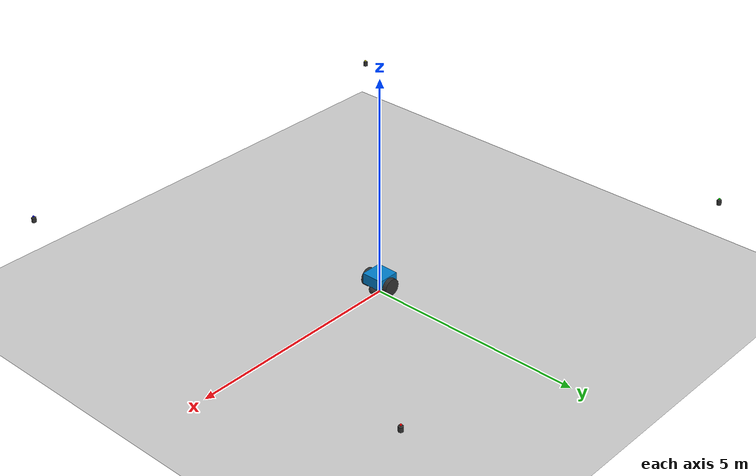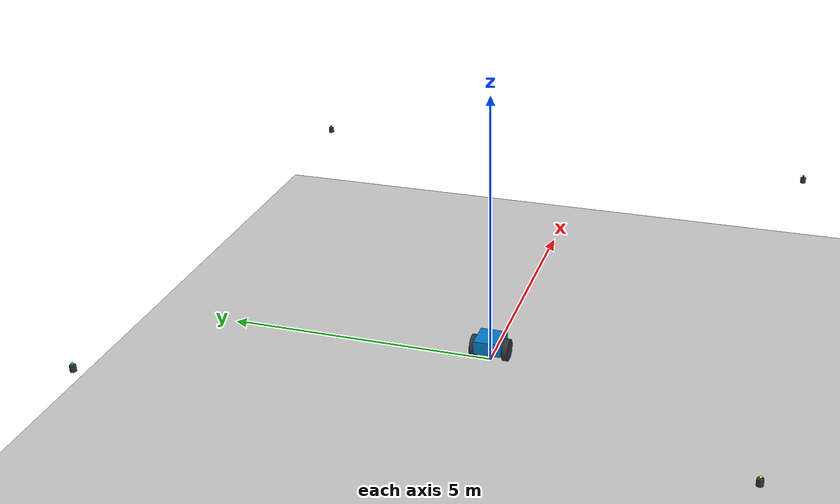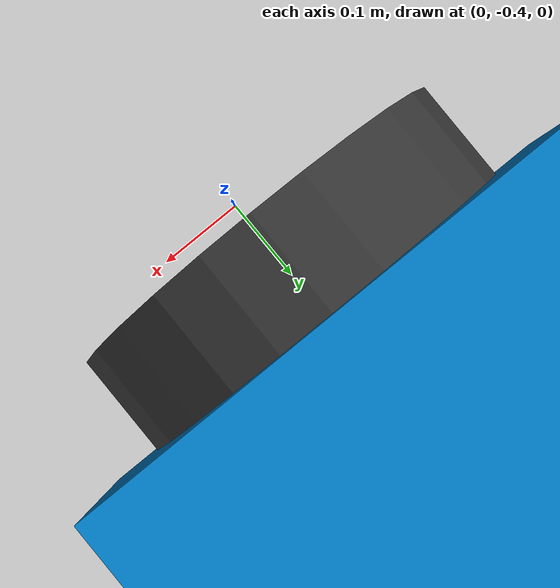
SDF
<?xml version="1.0" ?>
<sdf version="1.7">
  <world name="uwb_world">
    <physics name="1ms" type="ignored">
      <max_step_size>0.001</max_step_size>
      <real_time_factor>1.0</real_time_factor>
    </physics>

    <plugin
      filename="gz-sim-physics-system"
      name="gz::sim::systems::Physics">
    </plugin>
    <plugin
      filename="gz-sim-user-commands-system"
      name="gz::sim::systems::UserCommands">
    </plugin>
    <plugin
      filename="gz-sim-scene-broadcaster-system"
      name="gz::sim::systems::SceneBroadcaster">
    </plugin>
    <plugin
      filename="libignition-gazebo-sensors-system.so"
      name="ignition::gazebo::systems::Sensors">
      <render_engine>ogre</render_engine>
    </plugin>

    <scene>
      <ambient>1.0 1.0 1.0 1</ambient>
      <background>0.8 0.8 0.8 1</background>
      <grid>true</grid>
    </scene>

    <model name="ground_plane">
      <static>true</static>
      <link name="link">
        <collision name="collision">
          <geometry>
            <plane>
              <normal>0 0 1</normal>
              <size>100 100</size>
            </plane>
          </geometry>
        </collision>
        <visual name="visual">
          <geometry>
            <plane>
              <normal>0 0 1</normal>
              <size>100 100</size>
            </plane>
          </geometry>
          <material>
            <ambient>0.8 0.8 0.8 1</ambient>
            <diffuse>0.8 0.8 0.8 1</diffuse>
            <specular>0.8 0.8 0.8 1</specular>
          </material>
        </visual>
      </link>
    </model>

    <!-- UWB Anchor 1 (Static Reference) -->
    <model name="uwb_anchor_0">
      <static>true</static>
      <pose>5 5 2.0 0 0 0</pose>
      <link name="link">
        <visual name="visual">
          <geometry>
            <cylinder>
              <radius>0.05</radius>
              <length>0.1</length>
            </cylinder>
          </geometry>
          <material>
            <ambient>0.2 0.2 0.2 1</ambient>
            <diffuse>0.2 0.2 0.2 1</diffuse>
          </material>
        </visual>
        <!-- Antenna Visual -->
        <visual name="antenna">
          <pose>0 0 0.08 0 0 0</pose>
          <geometry><sphere><radius>0.02</radius></sphere></geometry>
          <material><ambient>1 0 0 1</ambient><diffuse>1 0 0 1</diffuse></material>
        </visual>
      </link>
    </model>

    <!-- UWB Anchor 2 -->
    <model name="uwb_anchor_1">
      <static>true</static>
      <pose>-5 5 2.0 0 0 0</pose>
      <link name="link">
        <visual name="visual">
          <geometry>
            <cylinder><radius>0.05</radius><length>0.1</length></cylinder>
          </geometry>
          <material><ambient>0.2 0.2 0.2 1</ambient><diffuse>0.2 0.2 0.2 1</diffuse></material>
        </visual>
        <visual name="antenna">
          <pose>0 0 0.08 0 0 0</pose>
          <geometry><sphere><radius>0.02</radius></sphere></geometry>
          <material><ambient>0 1 0 1</ambient><diffuse>0 1 0 1</diffuse></material>
        </visual>
      </link>
    </model>

    <!-- UWB Anchor 3 -->
    <model name="uwb_anchor_2">
      <static>true</static>
      <pose>5 -5 2.0 0 0 0</pose>
      <link name="link">
        <visual name="visual">
          <geometry>
            <cylinder><radius>0.05</radius><length>0.1</length></cylinder>
          </geometry>
          <material><ambient>0.2 0.2 0.2 1</ambient><diffuse>0.2 0.2 0.2 1</diffuse></material>
        </visual>
        <visual name="antenna">
          <pose>0 0 0.08 0 0 0</pose>
          <geometry><sphere><radius>0.02</radius></sphere></geometry>
          <material><ambient>0 0 1 1</ambient><diffuse>0 0 1 1</diffuse></material>
        </visual>
      </link>
    </model>

    <!-- UWB Anchor 4 -->
    <model name="uwb_anchor_3">
      <static>true</static>
      <pose>-5 -5 2.0 0 0 0</pose>
      <link name="link">
        <visual name="visual">
          <geometry>
            <cylinder><radius>0.05</radius><length>0.1</length></cylinder>
          </geometry>
          <material><ambient>0.2 0.2 0.2 1</ambient><diffuse>0.2 0.2 0.2 1</diffuse></material>
        </visual>
        <visual name="antenna">
          <pose>0 0 0.08 0 0 0</pose>
          <geometry><sphere><radius>0.02</radius></sphere></geometry>
          <material><ambient>1 1 0 1</ambient><diffuse>1 1 0 1</diffuse></material>
        </visual>
      </link>
    </model>

    <!-- Tag Robot (Mobile Entity) -->
    <model name="tag_robot">
      <pose>0 0 0.35 0 0 0</pose>
      <link name="base_link">
        <inertial>
          <mass>1.5</mass>
          <inertia>
            <ixx>0.05</ixx><iyy>0.05</iyy><izz>0.05</izz>
          </inertia>
        </inertial>
        <collision name="collision">
          <geometry><box><size>0.5 0.5 0.25</size></box></geometry>
        </collision>
        <visual name="visual">
          <geometry><box><size>0.5 0.5 0.25</size></box></geometry>
          <material>
            <ambient>0 0.5 0.8 1</ambient>
            <diffuse>0 0.5 0.8 1</diffuse>
          </material>
        </visual>
      </link>

      <!-- Left Wheel -->
      <link name="left_wheel">
        <pose>0 0.3 -0.1 -1.5707 0 0</pose>
        <inertial>
          <mass>0.5</mass>
          <inertia>
            <ixx>0.001</ixx><iyy>0.001</iyy><izz>0.001</izz>
          </inertia>
        </inertial>
        <collision name="collision">
          <geometry><cylinder><radius>0.2</radius><length>0.1</length></cylinder></geometry>
          <surface>
            <friction>
              <ode><mu>1.0</mu><mu2>1.0</mu2></ode>
            </friction>
          </surface>
        </collision>
        <visual name="visual">
          <geometry><cylinder><radius>0.2</radius><length>0.1</length></cylinder></geometry>
          <material><ambient>0.2 0.2 0.2 1</ambient><diffuse>0.2 0.2 0.2 1</diffuse></material>
        </visual>
      </link>

      <!-- Right Wheel -->
      <link name="right_wheel">
        <pose>0 -0.3 -0.1 -1.5707 0 0</pose>
        <inertial>
          <mass>0.5</mass>
          <inertia>
            <ixx>0.001</ixx><iyy>0.001</iyy><izz>0.001</izz>
          </inertia>
        </inertial>
        <collision name="collision">
          <geometry><cylinder><radius>0.2</radius><length>0.1</length></cylinder></geometry>
          <surface>
            <friction>
              <ode><mu>1.0</mu><mu2>1.0</mu2></ode>
            </friction>
          </surface>
        </collision>
        <visual name="visual">
          <geometry><cylinder><radius>0.2</radius><length>0.1</length></cylinder></geometry>
          <material><ambient>0.2 0.2 0.2 1</ambient><diffuse>0.2 0.2 0.2 1</diffuse></material>
        </visual>
      </link>

      <!-- Castor -->
      <link name="castor">
        <pose>0.2 0 -0.2 0 0 0</pose>
        <collision name="collision">
          <geometry><sphere><radius>0.1</radius></sphere></geometry>
          <surface>
            <friction>
              <ode><mu>0</mu><mu2>0</mu2></ode>
            </friction>
          </surface>
        </collision>
        <visual name="visual">
          <geometry><sphere><radius>0.1</radius></sphere></geometry>
          <material><ambient>0.2 0.2 0.2 1</ambient><diffuse>0.2 0.2 0.2 1</diffuse></material>
        </visual>
      </link>

      <joint name="left_wheel_joint" type="revolute">
        <parent>base_link</parent>
        <child>left_wheel</child>
        <axis>
          <xyz>0 0 1</xyz>
        </axis>
      </joint>

      <joint name="right_wheel_joint" type="revolute">
        <parent>base_link</parent>
        <child>right_wheel</child>
        <axis>
          <xyz>0 0 1</xyz>
        </axis>
      </joint>

      <joint name="castor_joint" type="ball">
        <parent>base_link</parent>
        <child>castor</child>
      </joint>

      <!-- Diff Drive Plugin -->
      <plugin
        filename="libignition-gazebo-diff-drive-system.so"
        name="ignition::gazebo::systems::DiffDrive">
        <left_joint>left_wheel_joint</left_joint>
        <right_joint>right_wheel_joint</right_joint>
        <wheel_separation>0.6</wheel_separation>
        <wheel_radius>0.2</wheel_radius>
        <odom_publish_frequency>20</odom_publish_frequency>
        <topic>/cmd_vel</topic>
        <odom_topic>/odom</odom_topic>
        <tf_topic>/model/tag_robot/tf</tf_topic>
        <frame_id>odom</frame_id>
        <child_frame_id>base_footprint</child_frame_id>
        <publish_odom_tf>true</publish_odom_tf>
      </plugin>

      <!-- Joint State Publisher for Wheel Visualization -->
      <plugin
        filename="libignition-gazebo-joint-state-publisher-system.so"
        name="ignition::gazebo::systems::JointStatePublisher">
        <topic>/joint_states</topic>
      </plugin>

      <!-- Odometry Publisher for Ground Truth (Exact) -->
      <plugin
        filename="libignition-gazebo-odometry-publisher-system.so"
        name="ignition::gazebo::systems::OdometryPublisher">
        <odom_frame>map</odom_frame>
        <robot_base_frame>base_footprint</robot_base_frame>
        <odom_topic>/ground_truth/odom</odom_topic>
        <tf_topic>/ground_truth/tf</tf_topic>
        <publish_tf>false</publish_tf>
        <update_frequency>50</update_frequency>
      </plugin>

      <!-- FRONT TAG PLUGINS -->
      <plugin filename="libUWBPlugin.so" name="ros2_uwb_research_sim::UWBPlugin">
        <host_link>front_tag</host_link>
        <target_entity>uwb_anchor_0</target_entity>
        <target_position>5 5 2</target_position>
        <update_rate>20.0</update_rate>
        <gaussian_std>0.02</gaussian_std>
        <nlos_lambda>1.5</nlos_lambda>
        <nlos_prob>0.1</nlos_prob>
        <multipath_alpha>0.8</multipath_alpha>
        <multipath_std>0.01</multipath_std>
        <clock_drift_std>0.0001</clock_drift_std>
        <topic>/uwb/front/range_0</topic>
        <research_topic>/uwb/front/research_data</research_topic>
        <frame_id>uwb_anchor_0</frame_id>
      </plugin>
      <plugin filename="libUWBPlugin.so" name="ros2_uwb_research_sim::UWBPlugin">
        <host_link>front_tag</host_link>
        <target_entity>uwb_anchor_1</target_entity>
        <target_position>-5 5 2</target_position>
        <update_rate>20.0</update_rate>
        <gaussian_std>0.02</gaussian_std>
        <nlos_lambda>1.5</nlos_lambda>
        <nlos_prob>0.1</nlos_prob>
        <topic>/uwb/front/range_1</topic>
        <research_topic>/uwb/front/research_data</research_topic>
        <frame_id>uwb_anchor_1</frame_id>
      </plugin>
      <plugin filename="libUWBPlugin.so" name="ros2_uwb_research_sim::UWBPlugin">
        <host_link>front_tag</host_link>
        <target_entity>uwb_anchor_2</target_entity>
        <target_position>5 -5 2</target_position>
        <update_rate>20.0</update_rate>
        <gaussian_std>0.02</gaussian_std>
        <nlos_lambda>1.5</nlos_lambda>
        <nlos_prob>0.1</nlos_prob>
        <topic>/uwb/front/range_2</topic>
        <research_topic>/uwb/front/research_data</research_topic>
        <frame_id>uwb_anchor_2</frame_id>
      </plugin>
      <plugin filename="libUWBPlugin.so" name="ros2_uwb_research_sim::UWBPlugin">
        <host_link>front_tag</host_link>
        <target_entity>uwb_anchor_3</target_entity>
        <target_position>-5 -5 2</target_position>
        <update_rate>20.0</update_rate>
        <gaussian_std>0.02</gaussian_std>
        <nlos_lambda>1.5</nlos_lambda>
        <nlos_prob>0.1</nlos_prob>
        <topic>/uwb/front/range_3</topic>
        <research_topic>/uwb/front/research_data</research_topic>
        <frame_id>uwb_anchor_3</frame_id>
      </plugin>

      <!-- REAR TAG PLUGINS -->
      <plugin filename="libUWBPlugin.so" name="ros2_uwb_research_sim::UWBPlugin">
        <host_link>rear_tag</host_link>
        <target_entity>uwb_anchor_0</target_entity>
        <target_position>5 5 2</target_position>
        <update_rate>20.0</update_rate>
        <gaussian_std>0.02</gaussian_std>
        <nlos_lambda>1.5</nlos_lambda>
        <nlos_prob>0.1</nlos_prob>
        <topic>/uwb/rear/range_0</topic>
        <research_topic>/uwb/rear/research_data</research_topic>
        <frame_id>uwb_anchor_0</frame_id>
      </plugin>
      <plugin filename="libUWBPlugin.so" name="ros2_uwb_research_sim::UWBPlugin">
        <host_link>rear_tag</host_link>
        <target_entity>uwb_anchor_1</target_entity>
        <target_position>-5 5 2</target_position>
        <update_rate>20.0</update_rate>
        <gaussian_std>0.02</gaussian_std>
        <nlos_lambda>1.5</nlos_lambda>
        <nlos_prob>0.1</nlos_prob>
        <topic>/uwb/rear/range_1</topic>
        <research_topic>/uwb/rear/research_data</research_topic>
        <frame_id>uwb_anchor_1</frame_id>
      </plugin>
      <plugin filename="libUWBPlugin.so" name="ros2_uwb_research_sim::UWBPlugin">
        <host_link>rear_tag</host_link>
        <target_entity>uwb_anchor_2</target_entity>
        <target_position>5 -5 2</target_position>
        <update_rate>20.0</update_rate>
        <gaussian_std>0.02</gaussian_std>
        <nlos_lambda>1.5</nlos_lambda>
        <nlos_prob>0.1</nlos_prob>
        <topic>/uwb/rear/range_2</topic>
        <research_topic>/uwb/rear/research_data</research_topic>
        <frame_id>uwb_anchor_2</frame_id>
      </plugin>
      <plugin filename="libUWBPlugin.so" name="ros2_uwb_research_sim::UWBPlugin">
        <host_link>rear_tag</host_link>
        <target_entity>uwb_anchor_3</target_entity>
        <target_position>-5 -5 2</target_position>
        <update_rate>20.0</update_rate>
        <gaussian_std>0.02</gaussian_std>
        <nlos_lambda>1.5</nlos_lambda>
        <nlos_prob>0.1</nlos_prob>
        <topic>/uwb/rear/range_3</topic>
        <research_topic>/uwb/rear/research_data</research_topic>
        <frame_id>uwb_anchor_3</frame_id>
      </plugin>
    </model>

    <gui fullscreen="0">
      <camera name="user_camera">
        <pose>12 -12 10 0 0.5 2.4</pose>
        <view_controller>orbit</view_controller>
      </camera>
    </gui>

  </world>
</sdf>
